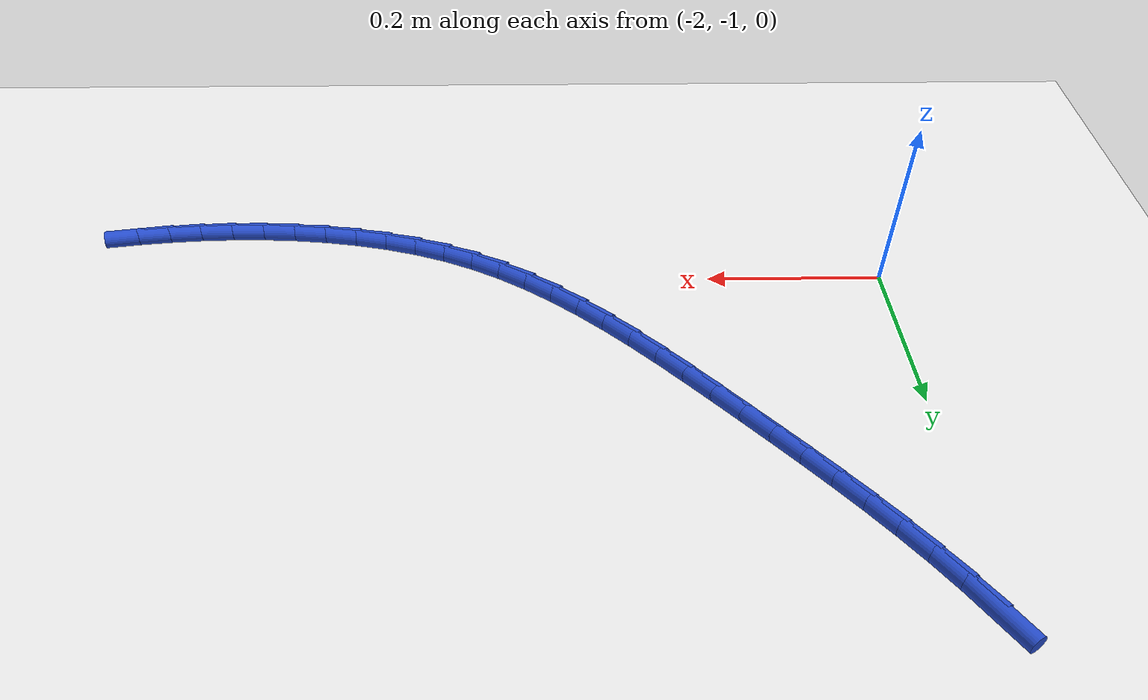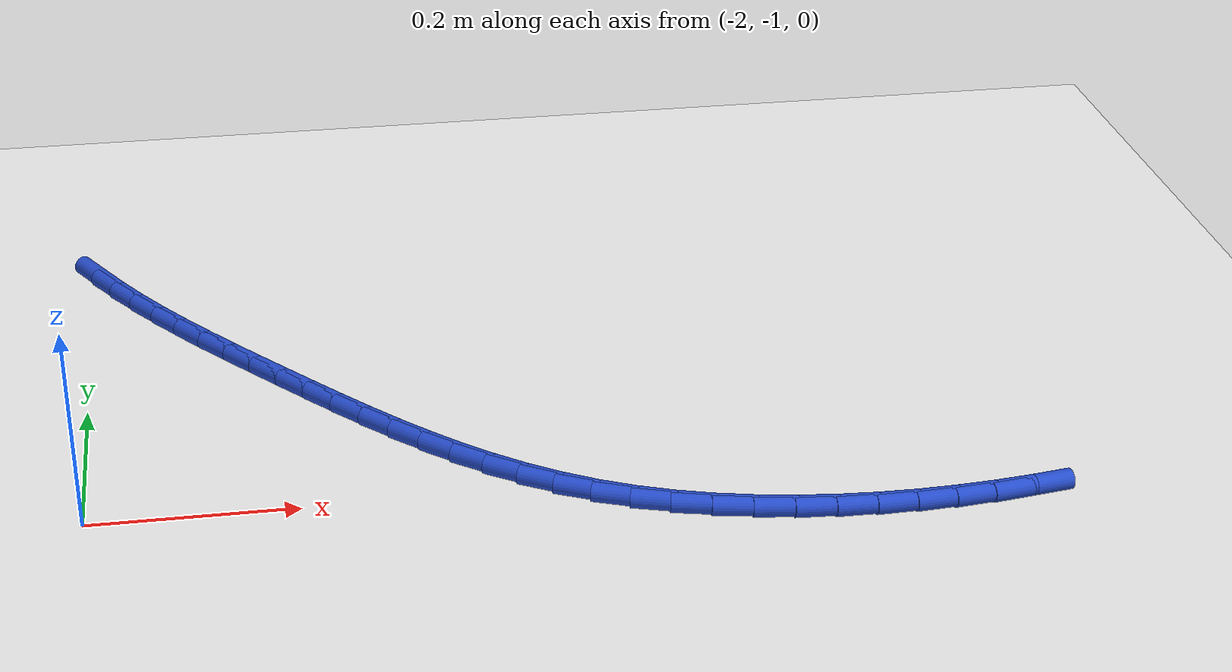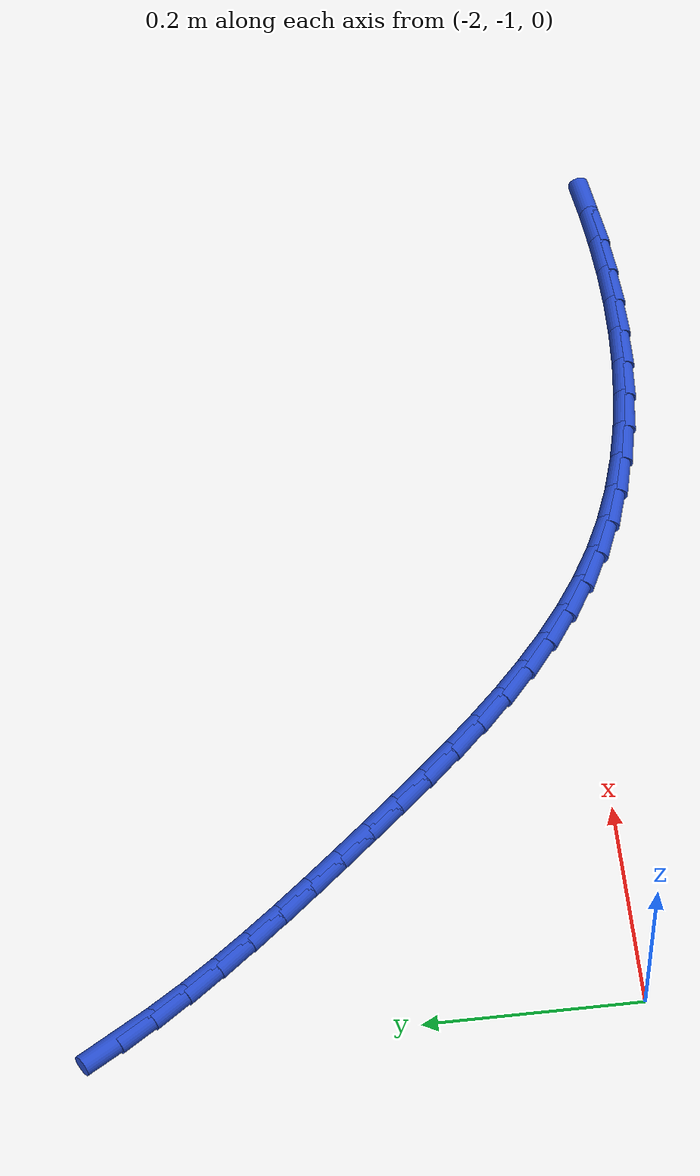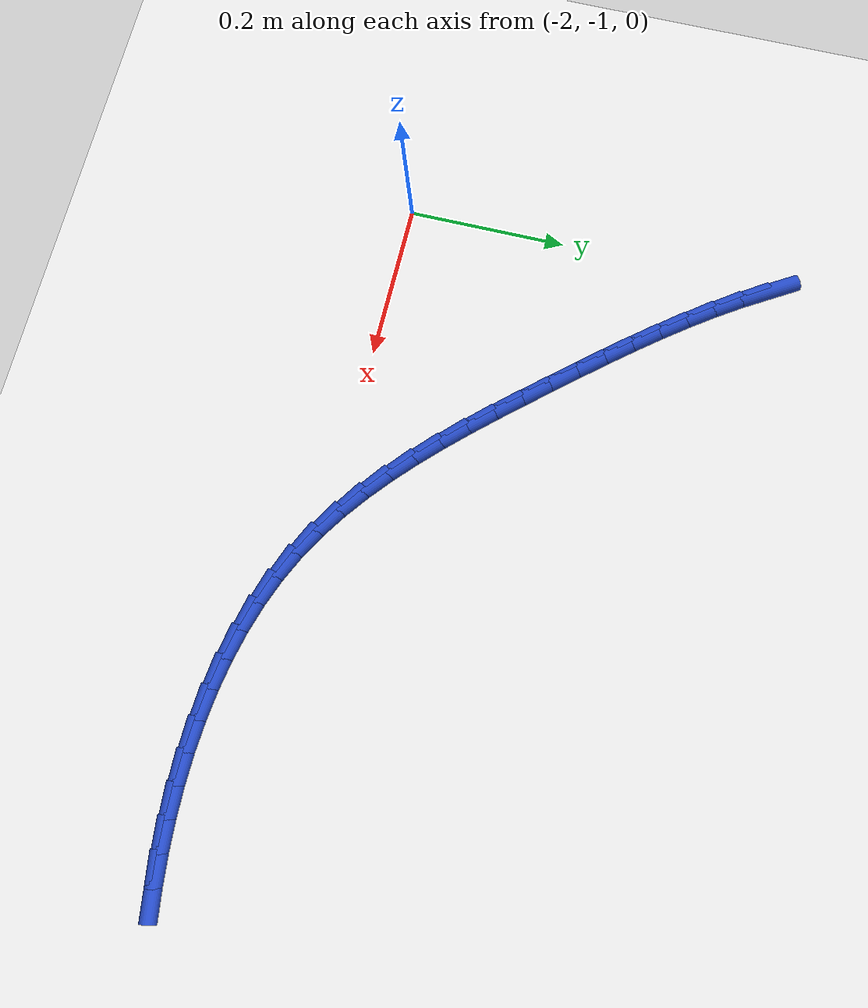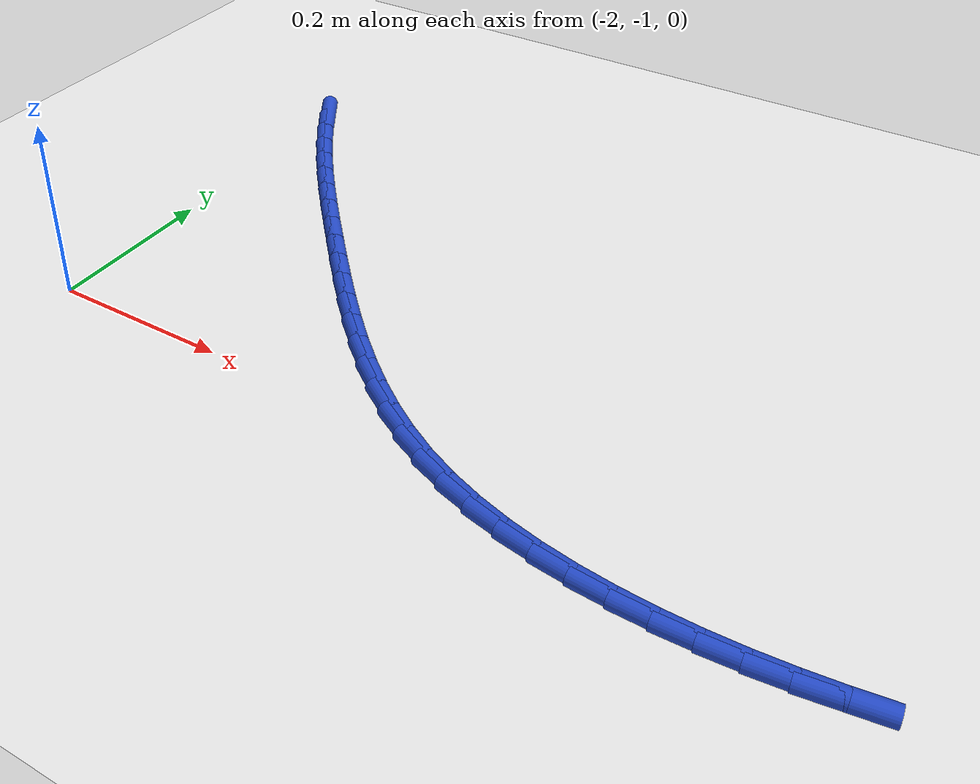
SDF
<sdf version="1.6">
 <world name="default">
  <model name="ground_plane">
   <static>1</static>
   <link name="link">
    <collision name="collision">
     <geometry><plane><normal>0 0 1</normal><size>100 100</size></plane></geometry>
     <surface><friction><ode><mu>100</mu><mu2>50</mu2></ode></friction></surface>
    </collision>
    <visual name="visual">
     <cast_shadows>0</cast_shadows>
     <geometry><plane><normal>0 0 1</normal><size>100 100</size></plane></geometry>
     <material>
      <script><uri>file://media/materials/scripts/gazebo.material</uri><name>Gazebo/WhiteGlow</name></script>
     </material>
    </visual>
   </link>
  </model>
  <model name="line">
   <link name="link_105">
    <pose>-1.9899006113484268 -0.5330579273448088 0.01 0 1.57 -1.0240669809035632</pose>
    <collision name="collision">
     <geometry><cylinder><radius>0.01</radius><length>0.08</length></cylinder></geometry>
    </collision>
    <visual name="visual">
     <material>
      <script><name>Gazebo/Blue</name><uri>file://media/materials/scripts/gazebo.material</uri></script>
     </material>
     <geometry><cylinder><radius>0.01</radius><length>0.08</length></cylinder></geometry>
    </visual>
   </link>
   <link name="link_106">
    <pose>-1.9706808099449677 -0.5646375454949886 0.01 0 1.57 -0.983547535716144</pose>
    <collision name="collision">
     <geometry><cylinder><radius>0.01</radius><length>0.08</length></cylinder></geometry>
    </collision>
    <visual name="visual">
     <material>
      <script><name>Gazebo/Blue</name><uri>file://media/materials/scripts/gazebo.material</uri></script>
     </material>
     <geometry><cylinder><radius>0.01</radius><length>0.08</length></cylinder></geometry>
    </visual>
   </link>
   <link name="link_107">
    <pose>-1.9499766882465435 -0.5957445083019818 0.01 0 1.57 -0.9490366218690264</pose>
    <collision name="collision">
     <geometry><cylinder><radius>0.01</radius><length>0.08</length></cylinder></geometry>
    </collision>
    <visual name="visual">
     <material>
      <script><name>Gazebo/Blue</name><uri>file://media/materials/scripts/gazebo.material</uri></script>
     </material>
     <geometry><cylinder><radius>0.01</radius><length>0.08</length></cylinder></geometry>
    </visual>
   </link>
   <link name="link_108">
    <pose>-1.927991454507689 -0.6264257633677229 0.01 0 1.57 -0.9202308942738169</pose>
    <collision name="collision">
     <geometry><cylinder><radius>0.01</radius><length>0.08</length></cylinder></geometry>
    </collision>
    <visual name="visual">
     <material>
      <script><name>Gazebo/Blue</name><uri>file://media/materials/scripts/gazebo.material</uri></script>
     </material>
     <geometry><cylinder><radius>0.01</radius><length>0.08</length></cylinder></geometry>
    </visual>
   </link>
   <link name="link_109">
    <pose>-1.904928316982939 -0.6567282582941467 0.01 0 1.57 -0.8968434973424868</pose>
    <collision name="collision">
     <geometry><cylinder><radius>0.01</radius><length>0.08</length></cylinder></geometry>
    </collision>
    <visual name="visual">
     <material>
      <script><name>Gazebo/Blue</name><uri>file://media/materials/scripts/gazebo.material</uri></script>
     </material>
     <geometry><cylinder><radius>0.01</radius><length>0.08</length></cylinder></geometry>
    </visual>
   </link>
   <link name="link_110">
    <pose>-1.8809904839268292 -0.6866989406831862 0.01 0 1.57 -0.8786253228269776</pose>
    <collision name="collision">
     <geometry><cylinder><radius>0.01</radius><length>0.08</length></cylinder></geometry>
    </collision>
    <visual name="visual">
     <material>
      <script><name>Gazebo/Blue</name><uri>file://media/materials/scripts/gazebo.material</uri></script>
     </material>
     <geometry><cylinder><radius>0.01</radius><length>0.08</length></cylinder></geometry>
    </visual>
   </link>
   <link name="link_111">
    <pose>-1.8563811635938943 -0.716384758136776 0.01 0 1.57 -0.8653786873906396</pose>
    <collision name="collision">
     <geometry><cylinder><radius>0.01</radius><length>0.08</length></cylinder></geometry>
    </collision>
    <visual name="visual">
     <material>
      <script><name>Gazebo/Blue</name><uri>file://media/materials/scripts/gazebo.material</uri></script>
     </material>
     <geometry><cylinder><radius>0.01</radius><length>0.08</length></cylinder></geometry>
    </visual>
   </link>
   <link name="link_112">
    <pose>-1.83130356423867 -0.7458326582568511 0.01 0 1.57 -0.856965996456185</pose>
    <collision name="collision">
     <geometry><cylinder><radius>0.01</radius><length>0.08</length></cylinder></geometry>
    </collision>
    <visual name="visual">
     <material>
      <script><name>Gazebo/Blue</name><uri>file://media/materials/scripts/gazebo.material</uri></script>
     </material>
     <geometry><cylinder><radius>0.01</radius><length>0.08</length></cylinder></geometry>
    </visual>
   </link>
   <link name="link_113">
    <pose>-1.8059608941156906 -0.775089588645345 0.01 0 1.57 -0.8525992975533079</pose>
    <collision name="collision">
     <geometry><cylinder><radius>0.01</radius><length>0.08</length></cylinder></geometry>
    </collision>
    <visual name="visual">
     <material>
      <script><name>Gazebo/Blue</name><uri>file://media/materials/scripts/gazebo.material</uri></script>
     </material>
     <geometry><cylinder><radius>0.01</radius><length>0.08</length></cylinder></geometry>
    </visual>
   </link>
   <link name="link_114">
    <pose>-1.7805349378550652 -0.8041849656960675 0.01 0 1.57 -0.8452886065596928</pose>
    <collision name="collision">
     <geometry><cylinder><radius>0.01</radius><length>0.08</length></cylinder></geometry>
    </collision>
    <visual name="visual">
     <material>
      <script><name>Gazebo/Blue</name><uri>file://media/materials/scripts/gazebo.material</uri></script>
     </material>
     <geometry><cylinder><radius>0.01</radius><length>0.08</length></cylinder></geometry>
    </visual>
   </link>
   <link name="link_115">
    <pose>-1.7549995236487972 -0.8329780325620745 0.01 0 1.57 -0.8310039769132361</pose>
    <collision name="collision">
     <geometry><cylinder><radius>0.01</radius><length>0.08</length></cylinder></geometry>
    </collision>
    <visual name="visual">
     <material>
      <script><name>Gazebo/Blue</name><uri>file://media/materials/scripts/gazebo.material</uri></script>
     </material>
     <geometry><cylinder><radius>0.01</radius><length>0.08</length></cylinder></geometry>
    </visual>
   </link>
   <link name="link_116">
    <pose>-1.7292115562745682 -0.8612323525679124 0.01 0 1.57 -0.8094911621612656</pose>
    <collision name="collision">
     <geometry><cylinder><radius>0.01</radius><length>0.08</length></cylinder></geometry>
    </collision>
    <visual name="visual">
     <material>
      <script><name>Gazebo/Blue</name><uri>file://media/materials/scripts/gazebo.material</uri></script>
     </material>
     <geometry><cylinder><radius>0.01</radius><length>0.08</length></cylinder></geometry>
    </visual>
   </link>
   <link name="link_117">
    <pose>-1.7030266381161328 -0.8887104232735998 0.01 0 1.57 -0.7804735047733344</pose>
    <collision name="collision">
     <geometry><cylinder><radius>0.01</radius><length>0.08</length></cylinder></geometry>
    </collision>
    <visual name="visual">
     <material>
      <script><name>Gazebo/Blue</name><uri>file://media/materials/scripts/gazebo.material</uri></script>
     </material>
     <geometry><cylinder><radius>0.01</radius><length>0.08</length></cylinder></geometry>
    </visual>
   </link>
   <link name="link_118">
    <pose>-1.6763003715572433 -0.915174742239154 0.01 0 1.57 -0.7436372871864</pose>
    <collision name="collision">
     <geometry><cylinder><radius>0.01</radius><length>0.08</length></cylinder></geometry>
    </collision>
    <visual name="visual">
     <material>
      <script><name>Gazebo/Blue</name><uri>file://media/materials/scripts/gazebo.material</uri></script>
     </material>
     <geometry><cylinder><radius>0.01</radius><length>0.08</length></cylinder></geometry>
    </visual>
   </link>
   <link name="link_119">
    <pose>-1.648888358981655 -0.9403878070245933 0.01 0 1.57 -0.6986784450134623</pose>
    <collision name="collision">
     <geometry><cylinder><radius>0.01</radius><length>0.08</length></cylinder></geometry>
    </collision>
    <visual name="visual">
     <material>
      <script><name>Gazebo/Blue</name><uri>file://media/materials/scripts/gazebo.material</uri></script>
     </material>
     <geometry><cylinder><radius>0.01</radius><length>0.08</length></cylinder></geometry>
    </visual>
   </link>
   <link name="link_120">
    <pose>-1.6206462027731205 -0.9641121151899359 0.01 0 1.57 -0.6453719493023714</pose>
    <collision name="collision">
     <geometry><cylinder><radius>0.01</radius><length>0.08</length></cylinder></geometry>
    </collision>
    <visual name="visual">
     <material>
      <script><name>Gazebo/Blue</name><uri>file://media/materials/scripts/gazebo.material</uri></script>
     </material>
     <geometry><cylinder><radius>0.01</radius><length>0.08</length></cylinder></geometry>
    </visual>
   </link>
   <link name="link_121">
    <pose>-1.5914295053153948 -0.9861101642951977 0.01 0 1.57 -0.5836661231501403</pose>
    <collision name="collision">
     <geometry><cylinder><radius>0.01</radius><length>0.08</length></cylinder></geometry>
    </collision>
    <visual name="visual">
     <material>
      <script><name>Gazebo/Blue</name><uri>file://media/materials/scripts/gazebo.material</uri></script>
     </material>
     <geometry><cylinder><radius>0.01</radius><length>0.08</length></cylinder></geometry>
    </visual>
   </link>
   <link name="link_122">
    <pose>-1.561093868992231 -1.0061444519003977 0.01 0 1.57 -0.5137971315883091</pose>
    <collision name="collision">
     <geometry><cylinder><radius>0.01</radius><length>0.08</length></cylinder></geometry>
    </collision>
    <visual name="visual">
     <material>
      <script><name>Gazebo/Blue</name><uri>file://media/materials/scripts/gazebo.material</uri></script>
     </material>
     <geometry><cylinder><radius>0.01</radius><length>0.08</length></cylinder></geometry>
    </visual>
   </link>
   <link name="link_123">
    <pose>-1.5294948961873829 -1.023977475565553 0.01 0 1.57 -0.43660181350311006</pose>
    <collision name="collision">
     <geometry><cylinder><radius>0.01</radius><length>0.08</length></cylinder></geometry>
    </collision>
    <visual name="visual">
     <material>
      <script><name>Gazebo/Blue</name><uri>file://media/materials/scripts/gazebo.material</uri></script>
     </material>
     <geometry><cylinder><radius>0.01</radius><length>0.08</length></cylinder></geometry>
    </visual>
   </link>
   <link name="link_124">
    <pose>-1.4964937532059257 -1.03937699034994 0.01 0 1.57 -0.3589048541067252</pose>
    <collision name="collision">
     <geometry><cylinder><radius>0.01</radius><length>0.08</length></cylinder></geometry>
    </collision>
    <visual name="visual">
     <material>
      <script><name>Gazebo/Blue</name><uri>file://media/materials/scripts/gazebo.material</uri></script>
     </material>
     <geometry><cylinder><radius>0.01</radius><length>0.08</length></cylinder></geometry>
    </visual>
   </link>
   <link name="link_125">
    <pose>-1.46212192267001 -1.0522716877925051 0.01 0 1.57 -0.28761654986687324</pose>
    <collision name="collision">
     <geometry><cylinder><radius>0.01</radius><length>0.08</length></cylinder></geometry>
    </collision>
    <visual name="visual">
     <material>
      <script><name>Gazebo/Blue</name><uri>file://media/materials/scripts/gazebo.material</uri></script>
     </material>
     <geometry><cylinder><radius>0.01</radius><length>0.08</length></cylinder></geometry>
    </visual>
   </link>
   <link name="link_126">
    <pose>-1.4266086945480196 -1.0627771729264675 0.01 0 1.57 -0.2225991546048186</pose>
    <collision name="collision">
     <geometry><cylinder><radius>0.01</radius><length>0.08</length></cylinder></geometry>
    </collision>
    <visual name="visual">
     <material>
      <script><name>Gazebo/Blue</name><uri>file://media/materials/scripts/gazebo.material</uri></script>
     </material>
     <geometry><cylinder><radius>0.01</radius><length>0.08</length></cylinder></geometry>
    </visual>
   </link>
   <link name="link_127">
    <pose>-1.3901944595566558 -1.0710195401814002 0.01 0 1.57 -0.16321133707448393</pose>
    <collision name="collision">
     <geometry><cylinder><radius>0.01</radius><length>0.08</length></cylinder></geometry>
    </collision>
    <visual name="visual">
     <material>
      <script><name>Gazebo/Blue</name><uri>file://media/materials/scripts/gazebo.material</uri></script>
     </material>
     <geometry><cylinder><radius>0.01</radius><length>0.08</length></cylinder></geometry>
    </visual>
   </link>
   <link name="link_128">
    <pose>-1.3531196084126174 -1.077124883986878 0.01 0 1.57 -0.10876776854565104</pose>
    <collision name="collision">
     <geometry><cylinder><radius>0.01</radius><length>0.08</length></cylinder></geometry>
    </collision>
    <visual name="visual">
     <material>
      <script><name>Gazebo/Blue</name><uri>file://media/materials/scripts/gazebo.material</uri></script>
     </material>
     <geometry><cylinder><radius>0.01</radius><length>0.08</length></cylinder></geometry>
    </visual>
   </link>
   <link name="link_129">
    <pose>-1.3156245318326036 -1.0812192987724731 0.01 0 1.57 -0.058581478652376034</pose>
    <collision name="collision">
     <geometry><cylinder><radius>0.01</radius><length>0.08</length></cylinder></geometry>
    </collision>
    <visual name="visual">
     <material>
      <script><name>Gazebo/Blue</name><uri>file://media/materials/scripts/gazebo.material</uri></script>
     </material>
     <geometry><cylinder><radius>0.01</radius><length>0.08</length></cylinder></geometry>
    </visual>
   </link>
   <link name="link_130">
    <pose>-1.277949620533315 -1.0834288789677606 0.01 0 1.57 -0.011984605261902535</pose>
    <collision name="collision">
     <geometry><cylinder><radius>0.01</radius><length>0.08</length></cylinder></geometry>
    </collision>
    <visual name="visual">
     <material>
      <script><name>Gazebo/Blue</name><uri>file://media/materials/scripts/gazebo.material</uri></script>
     </material>
     <geometry><cylinder><radius>0.01</radius><length>0.08</length></cylinder></geometry>
    </visual>
   </link>
   <link name="link_131">
    <pose>-1.2403345961436125 -1.0838797017712025 0.01 0 1.57 0.03164906943509097</pose>
    <collision name="collision">
     <geometry><cylinder><radius>0.01</radius><length>0.08</length></cylinder></geometry>
    </collision>
    <visual name="visual">
     <material>
      <script><name>Gazebo/Blue</name><uri>file://media/materials/scripts/gazebo.material</uri></script>
     </material>
     <geometry><cylinder><radius>0.01</radius><length>0.08</length></cylinder></geometry>
    </visual>
   </link>
   <link name="link_132">
    <pose>-1.2029405002873559 -1.082695818124203 0.01 0 1.57 0.0724824045507028</pose>
    <collision name="collision">
     <geometry><cylinder><radius>0.01</radius><length>0.08</length></cylinder></geometry>
    </collision>
    <visual name="visual">
     <material>
      <script><name>Gazebo/Blue</name><uri>file://media/materials/scripts/gazebo.material</uri></script>
     </material>
     <geometry><cylinder><radius>0.01</radius><length>0.08</length></cylinder></geometry>
    </visual>
   </link>
   <link name="link_133">
    <pose>-1.1657767773217007 -1.0799973748627807 0.01 0 1.57 0.11035578351568753</pose>
    <collision name="collision">
     <geometry><cylinder><radius>0.01</radius><length>0.08</length></cylinder></geometry>
    </collision>
    <visual name="visual">
     <material>
      <script><name>Gazebo/Blue</name><uri>file://media/materials/scripts/gazebo.material</uri></script>
     </material>
     <geometry><cylinder><radius>0.01</radius><length>0.08</length></cylinder></geometry>
    </visual>
   </link>
   <link name="link_134">
    <pose>-1.1288356218749398 -1.075904074588299 0.01 0 1.57 0.14514634429528786</pose>
    <collision name="collision">
     <geometry><cylinder><radius>0.01</radius><length>0.08</length></cylinder></geometry>
    </collision>
    <visual name="visual">
     <material>
      <script><name>Gazebo/Blue</name><uri>file://media/materials/scripts/gazebo.material</uri></script>
     </material>
     <geometry><cylinder><radius>0.01</radius><length>0.08</length></cylinder></geometry>
    </visual>
   </link>
  </model>
 </world>
</sdf>
